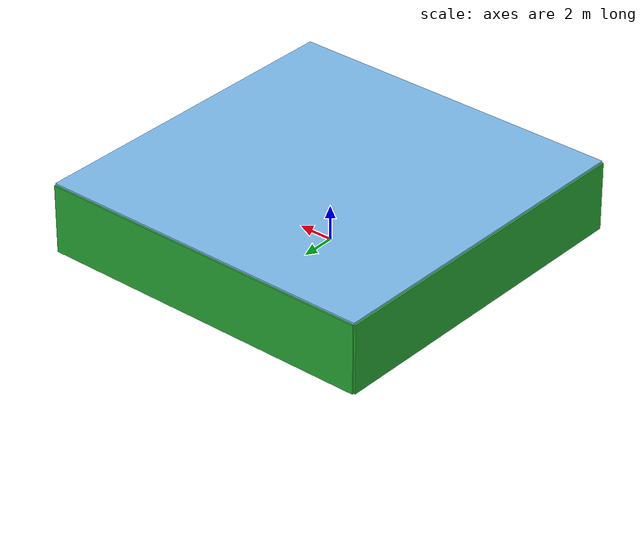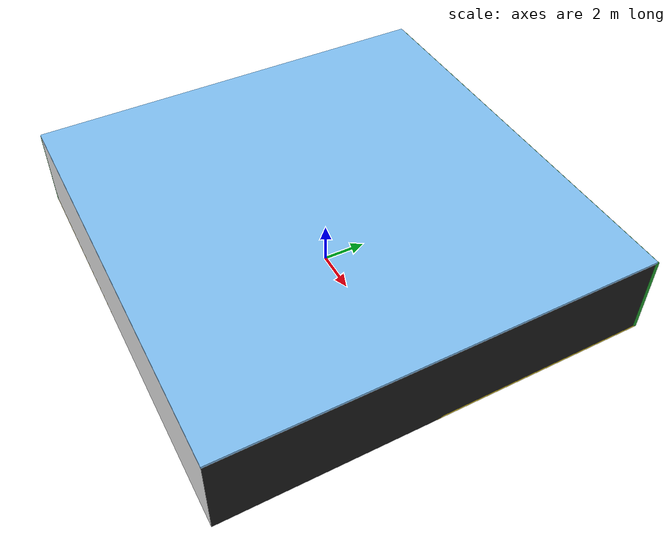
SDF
<sdf version="1.4">
 <world name="default">
  <physics type="ode">
   <max_step_size>0.001</max_step_size>
   <real_time_factor>1</real_time_factor>
   <real_time_update_rate>1000</real_time_update_rate>
   <gravity>0 0 -9.8</gravity>
  </physics>
  <scene><ambient>0.4 0.4 0.4 1</ambient><background>0.7 0.7 0.7 1</background><shadows>1</shadows></scene>
  <model name="Surrounding">
   <static>1</static>
   <link name="Ceiling">
    <collision name="Ceiling_Collision"><geometry><box><size>20 20 0.1</size></box></geometry></collision>
    <visual name="Ceiling_Visual">
     <geometry><box><size>20 20 0.1</size></box></geometry>
     <material>
      <script><uri>file://media/materials/scripts/gazebo.material</uri><name>Gazebo/SkyBlue</name></script>
     </material>
    </visual>
    <pose>0 0 4.05 0 0 0</pose>
   </link>
   <link name="Wall_South">
    <collision name="Wall_South_Collision">
     <geometry><box><size>20 0 4</size></box></geometry>
     <pose>0 0 2 0 -0 0</pose>
    </collision>
    <visual name="Wall_South_Visual">
     <pose>0 0 2 0 -0 0</pose>
     <geometry><box><size>20 0 4</size></box></geometry>
     <material>
      <script><uri>file://media/materials/scripts/gazebo.material</uri><name>Gazebo/WhiteGlow</name></script>
     </material>
    </visual>
    <velocity_decay><linear>0</linear><angular>0</angular></velocity_decay>
    <pose>0 -10 0 0 -0 0</pose>
   </link>
   <link name="Wall_East">
    <collision name="Wall_21_Collision">
     <geometry><box><size>20 0 4</size></box></geometry>
     <pose>0 0 2 0 -0 0</pose>
    </collision>
    <visual name="Wall_21_Visual">
     <pose>0 0 2 0 -0 0</pose>
     <geometry><box><size>20 0 4</size></box></geometry>
     <material>
      <script><uri>file://media/materials/scripts/gazebo.material</uri><name>Gazebo/Black</name></script>
     </material>
    </visual>
    <velocity_decay><linear>0</linear><angular>0</angular></velocity_decay>
    <pose>10 0 0 0 -0 1.5708</pose>
   </link>
   <link name="Wall_North">
    <collision name="Wall_22_Collision">
     <geometry><box><size>20 0.2 4</size></box></geometry>
     <pose>0 0 2 0 -0 0</pose>
    </collision>
    <visual name="Wall_22_Visual">
     <pose>0 0 2 0 -0 0</pose>
     <geometry><box><size>20 0.2 4</size></box></geometry>
     <material>
      <script><uri>file://media/materials/scripts/gazebo.material</uri><name>Gazebo/Green</name></script>
     </material>
    </visual>
    <velocity_decay><linear>0</linear><angular>0</angular></velocity_decay>
    <pose>0 10 0 0 -0 0</pose>
   </link>
   <link name="Wall_West">
    <collision name="Wall_23_Collision">
     <geometry><box><size>20 0.2 4</size></box></geometry>
     <pose>0 0 2 0 -0 0</pose>
    </collision>
    <visual name="Wall_23_Visual">
     <pose>0 0 2 0 -0 0</pose>
     <geometry><box><size>20 0.2 4</size></box></geometry>
     <material>
      <script><uri>file://media/materials/scripts/gazebo.material</uri><name>Gazebo/Green</name></script>
     </material>
    </visual>
    <velocity_decay><linear>0</linear><angular>0</angular></velocity_decay>
    <pose>-10 0 0 0 0 -1.5708</pose>
   </link>
   <link name="Ground_link">
    <collision name="collision">
     <pose>0 0 .05 0 -0 0</pose>
     <geometry><box><size>20 20 0.1</size></box></geometry>
    </collision>
    <visual name="visual">
     <pose>0 0 .05 0 -0 0</pose>
     <geometry><box><size>20 20 0.1</size></box></geometry>
     <material>
      <script><uri>file://media/materials/scripts/gazebo.material</uri><name>Gazebo/ZincYellow</name></script>
     </material>
    </visual>
   </link>
   <static>1</static>
  </model>
  <spherical_coordinates>
   <surface_model>EARTH_WGS84</surface_model>
   <latitude_deg>0</latitude_deg>
   <longitude_deg>0</longitude_deg>
   <elevation>0</elevation>
   <heading_deg>0</heading_deg>
  </spherical_coordinates>
  <light name="lightball_0" type="diffuse">
   <diffuse>0.8 0.8 0.8 1</diffuse>
   <specular>0.2 0.2 0.2 1</specular>
   <attenuation>
    <range>100</range>
    <constant>0.7</constant>
    <linear>0.01</linear>
    <quadratic>0.001</quadratic>
   </attenuation>
   <direction>-0.5 0.1 -0.9</direction>
   <pose>-8.23510149796 -1.06483633852 0.897961607983 0 0 0</pose>
  </light>
  <include><uri>model://cabinet</uri><pose>-8.09705034809 -7.95674538961 0 0 0 0.916184453893</pose></include>
  <include><uri>model://cabinet</uri><pose>-6.68311774822 -1.83010158156 0 0 0 1.874970628</pose></include>
  <include><uri>model://cabinet</uri><pose>-7.16571035439 3.38714265606 0 0 0 2.31214868237</pose></include>
  <include><uri>model://cabinet</uri><pose>-3.91426828595 -3.80399637601 0 0 0 2.24817603432</pose></include>
 </world>
</sdf>

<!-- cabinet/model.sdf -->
<sdf version="1.5">
  <model name="cabinet">
    <static>true</static>
    <link name="cabinet_bottom_plate">
      <inertial>
        <pose>0 0 -1 0 0 0</pose>
        <inertia>
          <ixx>2.050000</ixx>
          <ixy>0</ixy>
          <ixz>0</ixz>
          <iyy>2.050000</iyy>
          <iyz>0</iyz>
          <izz>2.050000</izz>
        </inertia>
        <mass>25.000000</mass>
      </inertial>
      <collision name="cabinet_bottom_plate_geom">
        <pose>0 0 0.010000 0 0 0</pose>
        <geometry>
          <box>
            <size>0.450000 0.450000 0.020000</size>
          </box>
        </geometry>
      </collision>
      <visual name="cabinet_bottom_plate_geom_visual">
        <pose>0 0 0.010000 0 0 0</pose>
        <geometry>
          <box>
            <size>0.450000 0.450000 0.020000</size>
          </box>
        </geometry>
        <material>
          <script>
            <uri>model://media/materials/scripts/gazebo.material</uri>
            <name>Gazebo/Wood</name>
          </script>
        </material>
      </visual>
      <collision name="cabinet_bottom_plate_geom_cabinet_back_plate">
        <pose>0.235000 0 0.510000 0 0 0</pose>
        <geometry>
          <box>
            <size>0.020000 0.450000 1.020000</size>
          </box>
        </geometry>
      </collision>
      <visual name="cabinet_bottom_plate_geom_cabinet_back_plate_visual">
        <pose>0.235000 0 0.510000 0 0 0</pose>
        <geometry>
          <box>
            <size>0.020000 0.450000 1.020000</size>
          </box>
        </geometry>
        <material>
          <script>
            <uri>model://media/materials/scripts/gazebo.material</uri>
            <name>Gazebo/Wood</name>
          </script>
        </material>
      </visual>
      <collision name="cabinet_bottom_plate_geom_cabinet_left_plate">
        <pose>0 0.235000 0.510000 0 0 0</pose>
        <geometry>
          <box>
            <size>0.450000 0.020000 1.020000</size>
          </box>
        </geometry>
      </collision>
      <visual name="cabinet_bottom_plate_geom_cabinet_left_plate_visual">
        <pose>0 0.235000 0.510000 0 0 0</pose>
        <geometry>
          <box>
            <size>0.450000 0.020000 1.020000</size>
          </box>
        </geometry>
        <material>
          <script>
            <uri>model://media/materials/scripts/gazebo.material</uri>
            <name>Gazebo/Wood</name>
          </script>
        </material>
      </visual>
      <collision name="cabinet_bottom_plate_geom_cabinet_middle_plate">
        <pose>0 0 0.510000 0 0 0</pose>
        <geometry>
          <box>
            <size>0.450000 0.450000 0.020000</size>
          </box>
        </geometry>
      </collision>
      <visual name="cabinet_bottom_plate_geom_cabinet_middle_plate_visual">
        <pose>0 0 0.510000 0 0 0</pose>
        <geometry>
          <box>
            <size>0.450000 0.450000 0.020000</size>
          </box>
        </geometry>
        <material>
          <script>
            <uri>model://media/materials/scripts/gazebo.material</uri>
            <name>Gazebo/Wood</name>
          </script>
        </material>
      </visual>
      <collision name="cabinet_bottom_plate_geom_cabinet_right_plate">
        <pose>0 -0.235000 0.510000 0 0 0</pose>
        <geometry>
          <box>
            <size>0.450000 0.020000 1.020000</size>
          </box>
        </geometry>
      </collision>
      <visual name="cabinet_bottom_plate_geom_cabinet_right_plate_visual">
        <pose>0 -0.235000 0.510000 0 0 0</pose>
        <geometry>
          <box>
            <size>0.450000 0.020000 1.020000</size>
          </box>
        </geometry>
        <material>
          <script>
            <uri>model://media/materials/scripts/gazebo.material</uri>
            <name>Gazebo/Wood</name>
          </script>
        </material>
      </visual>
      <collision name="cabinet_bottom_plate_geom_cabinet_top_plate">
        <pose>0 0 1.010000 0 0 0</pose>
        <geometry>
          <box>
            <size>0.450000 0.450000 0.020000</size>
          </box>
        </geometry>
      </collision>
      <visual name="cabinet_bottom_plate_geom_cabinet_top_plate_visual">
        <pose>0 0 1.010000 0 0 0</pose>
        <geometry>
          <box>
            <size>0.450000 0.450000 0.020000</size>
          </box>
        </geometry>
        <material>
          <script>
            <uri>model://media/materials/scripts/gazebo.material</uri>
            <name>Gazebo/Wood</name>
          </script>
        </material>
      </visual>
    </link>
  </model>
</sdf>
